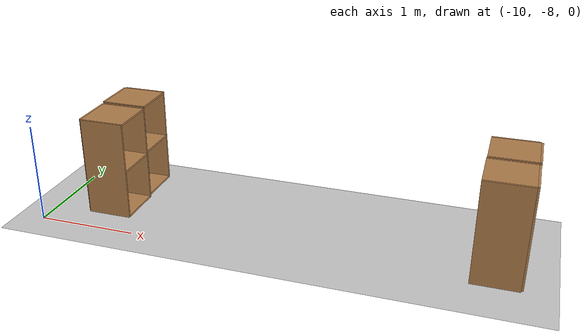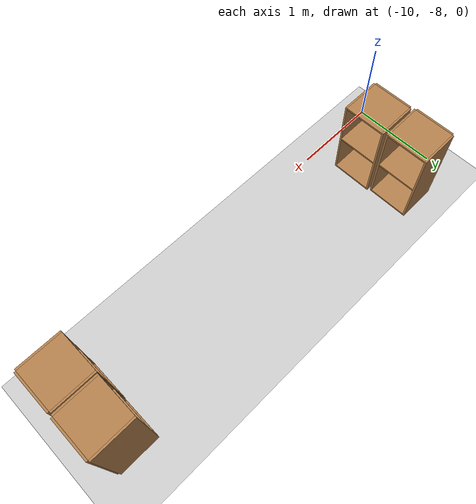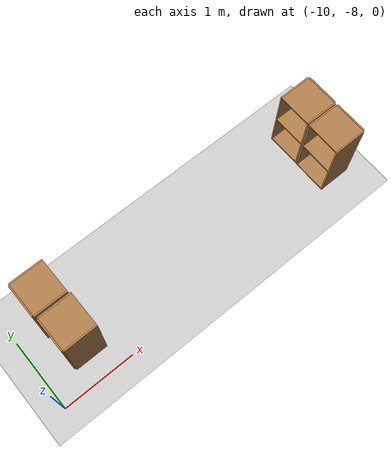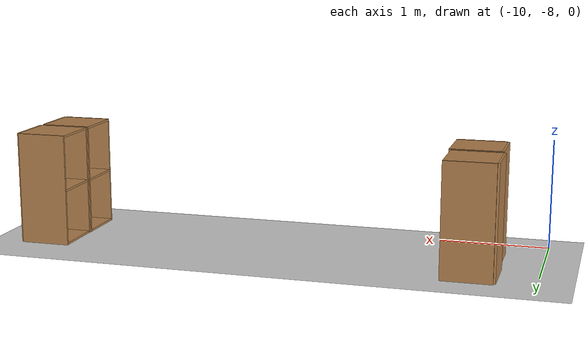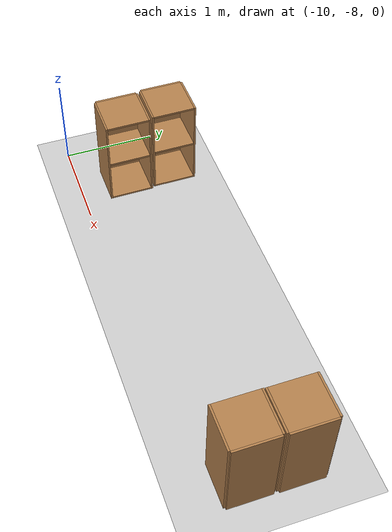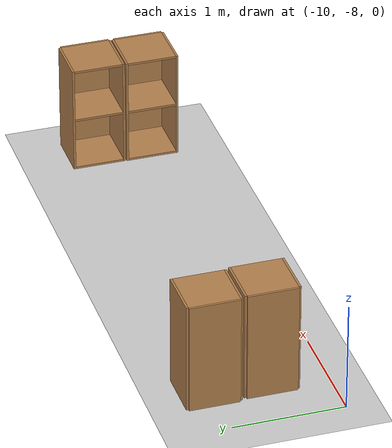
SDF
<sdf version="1.6">
 <world name="default">
  <model name="ground_plane">
   <static>1</static>
   <link name="link">
    <collision name="collision">
     <geometry><plane><normal>0 0 1</normal><size>100 100</size></plane></geometry>
     <surface><friction><ode><mu>100</mu><mu2>50</mu2></ode></friction></surface>
    </collision>
    <visual name="visual">
     <cast_shadows>0</cast_shadows>
     <geometry><plane><normal>0 0 1</normal><size>100 100</size></plane></geometry>
     <material>
      <script><uri>file://media/materials/scripts/gazebo.material</uri><name>Gazebo/Grey</name></script>
     </material>
    </visual>
   </link>
  </model>
  <model name="cabinet_clone_1">
   <static>1</static>
   <link name="cabinet_bottom_plate">
    <inertial>
     <pose>0 0 -1 0 -0 0</pose>
     <inertia><ixx>2.05</ixx><ixy>0</ixy><ixz>0</ixz><iyy>2.05</iyy><iyz>0</iyz><izz>2.05</izz></inertia>
     <mass>25</mass>
    </inertial>
    <collision name="cabinet_bottom_plate_geom">
     <pose>0 0 0.01 0 -0 0</pose>
     <geometry><box><size>0.45 0.45 0.02</size></box></geometry>
    </collision>
    <visual name="cabinet_bottom_plate_geom_visual">
     <pose>0 0 0.01 0 -0 0</pose>
     <geometry><box><size>0.45 0.45 0.02</size></box></geometry>
     <material>
      <script><uri>file://media/materials/scripts/gazebo.material</uri><name>Gazebo/Wood</name></script>
     </material>
    </visual>
    <collision name="cabinet_bottom_plate_geom_cabinet_back_plate">
     <pose>0.235 0 0.51 0 -0 0</pose>
     <geometry><box><size>0.02 0.45 1.02</size></box></geometry>
    </collision>
    <visual name="cabinet_bottom_plate_geom_cabinet_back_plate_visual">
     <pose>0.235 0 0.51 0 -0 0</pose>
     <geometry><box><size>0.02 0.45 1.02</size></box></geometry>
     <material>
      <script><uri>file://media/materials/scripts/gazebo.material</uri><name>Gazebo/Wood</name></script>
     </material>
    </visual>
    <collision name="cabinet_bottom_plate_geom_cabinet_left_plate">
     <pose>0 0.235 0.51 0 -0 0</pose>
     <geometry><box><size>0.45 0.02 1.02</size></box></geometry>
    </collision>
    <visual name="cabinet_bottom_plate_geom_cabinet_left_plate_visual">
     <pose>0 0.235 0.51 0 -0 0</pose>
     <geometry><box><size>0.45 0.02 1.02</size></box></geometry>
     <material>
      <script><uri>file://media/materials/scripts/gazebo.material</uri><name>Gazebo/Wood</name></script>
     </material>
    </visual>
    <collision name="cabinet_bottom_plate_geom_cabinet_middle_plate">
     <pose>0 0 0.51 0 -0 0</pose>
     <geometry><box><size>0.45 0.45 0.02</size></box></geometry>
    </collision>
    <visual name="cabinet_bottom_plate_geom_cabinet_middle_plate_visual">
     <pose>0 0 0.51 0 -0 0</pose>
     <geometry><box><size>0.45 0.45 0.02</size></box></geometry>
     <material>
      <script><uri>file://media/materials/scripts/gazebo.material</uri><name>Gazebo/Wood</name></script>
     </material>
    </visual>
    <collision name="cabinet_bottom_plate_geom_cabinet_right_plate">
     <pose>0 -0.235 0.51 0 -0 0</pose>
     <geometry><box><size>0.45 0.02 1.02</size></box></geometry>
    </collision>
    <visual name="cabinet_bottom_plate_geom_cabinet_right_plate_visual">
     <pose>0 -0.235 0.51 0 -0 0</pose>
     <geometry><box><size>0.45 0.02 1.02</size></box></geometry>
     <material>
      <script><uri>file://media/materials/scripts/gazebo.material</uri><name>Gazebo/Wood</name></script>
     </material>
    </visual>
    <collision name="cabinet_bottom_plate_geom_cabinet_top_plate">
     <pose>0 0 1.01 0 -0 0</pose>
     <geometry><box><size>0.45 0.45 0.02</size></box></geometry>
    </collision>
    <visual name="cabinet_bottom_plate_geom_cabinet_top_plate_visual">
     <pose>0 0 1.01 0 -0 0</pose>
     <geometry><box><size>0.45 0.45 0.02</size></box></geometry>
     <material>
      <script><uri>file://media/materials/scripts/gazebo.material</uri><name>Gazebo/Wood</name></script>
     </material>
    </visual>
   </link>
   <pose>-9.39749 -7.47225 0 0 0 -3.13836</pose>
  </model>
  <model name="cabinet_clone_2">
   <static>1</static>
   <link name="cabinet_bottom_plate">
    <inertial>
     <pose>0 0 -1 0 -0 0</pose>
     <inertia><ixx>2.05</ixx><ixy>0</ixy><ixz>0</ixz><iyy>2.05</iyy><iyz>0</iyz><izz>2.05</izz></inertia>
     <mass>25</mass>
    </inertial>
    <collision name="cabinet_bottom_plate_geom">
     <pose>0 0 0.01 0 -0 0</pose>
     <geometry><box><size>0.45 0.45 0.02</size></box></geometry>
    </collision>
    <visual name="cabinet_bottom_plate_geom_visual">
     <pose>0 0 0.01 0 -0 0</pose>
     <geometry><box><size>0.45 0.45 0.02</size></box></geometry>
     <material>
      <script><uri>file://media/materials/scripts/gazebo.material</uri><name>Gazebo/Wood</name></script>
     </material>
    </visual>
    <collision name="cabinet_bottom_plate_geom_cabinet_back_plate">
     <pose>0.235 0 0.51 0 -0 0</pose>
     <geometry><box><size>0.02 0.45 1.02</size></box></geometry>
    </collision>
    <visual name="cabinet_bottom_plate_geom_cabinet_back_plate_visual">
     <pose>0.235 0 0.51 0 -0 0</pose>
     <geometry><box><size>0.02 0.45 1.02</size></box></geometry>
     <material>
      <script><uri>file://media/materials/scripts/gazebo.material</uri><name>Gazebo/Wood</name></script>
     </material>
    </visual>
    <collision name="cabinet_bottom_plate_geom_cabinet_left_plate">
     <pose>0 0.235 0.51 0 -0 0</pose>
     <geometry><box><size>0.45 0.02 1.02</size></box></geometry>
    </collision>
    <visual name="cabinet_bottom_plate_geom_cabinet_left_plate_visual">
     <pose>0 0.235 0.51 0 -0 0</pose>
     <geometry><box><size>0.45 0.02 1.02</size></box></geometry>
     <material>
      <script><uri>file://media/materials/scripts/gazebo.material</uri><name>Gazebo/Wood</name></script>
     </material>
    </visual>
    <collision name="cabinet_bottom_plate_geom_cabinet_middle_plate">
     <pose>0 0 0.51 0 -0 0</pose>
     <geometry><box><size>0.45 0.45 0.02</size></box></geometry>
    </collision>
    <visual name="cabinet_bottom_plate_geom_cabinet_middle_plate_visual">
     <pose>0 0 0.51 0 -0 0</pose>
     <geometry><box><size>0.45 0.45 0.02</size></box></geometry>
     <material>
      <script><uri>file://media/materials/scripts/gazebo.material</uri><name>Gazebo/Wood</name></script>
     </material>
    </visual>
    <collision name="cabinet_bottom_plate_geom_cabinet_right_plate">
     <pose>0 -0.235 0.51 0 -0 0</pose>
     <geometry><box><size>0.45 0.02 1.02</size></box></geometry>
    </collision>
    <visual name="cabinet_bottom_plate_geom_cabinet_right_plate_visual">
     <pose>0 -0.235 0.51 0 -0 0</pose>
     <geometry><box><size>0.45 0.02 1.02</size></box></geometry>
     <material>
      <script><uri>file://media/materials/scripts/gazebo.material</uri><name>Gazebo/Wood</name></script>
     </material>
    </visual>
    <collision name="cabinet_bottom_plate_geom_cabinet_top_plate">
     <pose>0 0 1.01 0 -0 0</pose>
     <geometry><box><size>0.45 0.45 0.02</size></box></geometry>
    </collision>
    <visual name="cabinet_bottom_plate_geom_cabinet_top_plate_visual">
     <pose>0 0 1.01 0 -0 0</pose>
     <geometry><box><size>0.45 0.45 0.02</size></box></geometry>
     <material>
      <script><uri>file://media/materials/scripts/gazebo.material</uri><name>Gazebo/Wood</name></script>
     </material>
    </visual>
   </link>
   <pose>-9.4218 -6.96072 0 0 0 -3.13836</pose>
  </model>
  <model name="cabinet_clone_3">
   <static>1</static>
   <link name="cabinet_bottom_plate">
    <inertial>
     <pose>0 0 -1 0 -0 0</pose>
     <inertia><ixx>2.05</ixx><ixy>0</ixy><ixz>0</ixz><iyy>2.05</iyy><iyz>0</iyz><izz>2.05</izz></inertia>
     <mass>25</mass>
    </inertial>
    <collision name="cabinet_bottom_plate_geom">
     <pose>0 0 0.01 0 -0 0</pose>
     <geometry><box><size>0.45 0.45 0.02</size></box></geometry>
    </collision>
    <visual name="cabinet_bottom_plate_geom_visual">
     <pose>0 0 0.01 0 -0 0</pose>
     <geometry><box><size>0.45 0.45 0.02</size></box></geometry>
     <material>
      <script><uri>file://media/materials/scripts/gazebo.material</uri><name>Gazebo/Wood</name></script>
     </material>
    </visual>
    <collision name="cabinet_bottom_plate_geom_cabinet_back_plate">
     <pose>0.235 0 0.51 0 -0 0</pose>
     <geometry><box><size>0.02 0.45 1.02</size></box></geometry>
    </collision>
    <visual name="cabinet_bottom_plate_geom_cabinet_back_plate_visual">
     <pose>0.235 0 0.51 0 -0 0</pose>
     <geometry><box><size>0.02 0.45 1.02</size></box></geometry>
     <material>
      <script><uri>file://media/materials/scripts/gazebo.material</uri><name>Gazebo/Wood</name></script>
     </material>
    </visual>
    <collision name="cabinet_bottom_plate_geom_cabinet_left_plate">
     <pose>0 0.235 0.51 0 -0 0</pose>
     <geometry><box><size>0.45 0.02 1.02</size></box></geometry>
    </collision>
    <visual name="cabinet_bottom_plate_geom_cabinet_left_plate_visual">
     <pose>0 0.235 0.51 0 -0 0</pose>
     <geometry><box><size>0.45 0.02 1.02</size></box></geometry>
     <material>
      <script><uri>file://media/materials/scripts/gazebo.material</uri><name>Gazebo/Wood</name></script>
     </material>
    </visual>
    <collision name="cabinet_bottom_plate_geom_cabinet_middle_plate">
     <pose>0 0 0.51 0 -0 0</pose>
     <geometry><box><size>0.45 0.45 0.02</size></box></geometry>
    </collision>
    <visual name="cabinet_bottom_plate_geom_cabinet_middle_plate_visual">
     <pose>0 0 0.51 0 -0 0</pose>
     <geometry><box><size>0.45 0.45 0.02</size></box></geometry>
     <material>
      <script><uri>file://media/materials/scripts/gazebo.material</uri><name>Gazebo/Wood</name></script>
     </material>
    </visual>
    <collision name="cabinet_bottom_plate_geom_cabinet_right_plate">
     <pose>0 -0.235 0.51 0 -0 0</pose>
     <geometry><box><size>0.45 0.02 1.02</size></box></geometry>
    </collision>
    <visual name="cabinet_bottom_plate_geom_cabinet_right_plate_visual">
     <pose>0 -0.235 0.51 0 -0 0</pose>
     <geometry><box><size>0.45 0.02 1.02</size></box></geometry>
     <material>
      <script><uri>file://media/materials/scripts/gazebo.material</uri><name>Gazebo/Wood</name></script>
     </material>
    </visual>
    <collision name="cabinet_bottom_plate_geom_cabinet_top_plate">
     <pose>0 0 1.01 0 -0 0</pose>
     <geometry><box><size>0.45 0.45 0.02</size></box></geometry>
    </collision>
    <visual name="cabinet_bottom_plate_geom_cabinet_top_plate_visual">
     <pose>0 0 1.01 0 -0 0</pose>
     <geometry><box><size>0.45 0.45 0.02</size></box></geometry>
     <material>
      <script><uri>file://media/materials/scripts/gazebo.material</uri><name>Gazebo/Wood</name></script>
     </material>
    </visual>
   </link>
   <pose>-5.51572 -7.10166 0 0 -0 0.002353</pose>
  </model>
  <model name="cabinet_clone_3_clone_0">
   <static>1</static>
   <link name="cabinet_bottom_plate">
    <inertial>
     <pose>0 0 -1 0 -0 0</pose>
     <inertia><ixx>2.05</ixx><ixy>0</ixy><ixz>0</ixz><iyy>2.05</iyy><iyz>0</iyz><izz>2.05</izz></inertia>
     <mass>25</mass>
    </inertial>
    <collision name="cabinet_bottom_plate_geom">
     <pose>0 0 0.01 0 -0 0</pose>
     <geometry><box><size>0.45 0.45 0.02</size></box></geometry>
    </collision>
    <visual name="cabinet_bottom_plate_geom_visual">
     <pose>0 0 0.01 0 -0 0</pose>
     <geometry><box><size>0.45 0.45 0.02</size></box></geometry>
     <material>
      <script><uri>file://media/materials/scripts/gazebo.material</uri><name>Gazebo/Wood</name></script>
     </material>
    </visual>
    <collision name="cabinet_bottom_plate_geom_cabinet_back_plate">
     <pose>0.235 0 0.51 0 -0 0</pose>
     <geometry><box><size>0.02 0.45 1.02</size></box></geometry>
    </collision>
    <visual name="cabinet_bottom_plate_geom_cabinet_back_plate_visual">
     <pose>0.235 0 0.51 0 -0 0</pose>
     <geometry><box><size>0.02 0.45 1.02</size></box></geometry>
     <material>
      <script><uri>file://media/materials/scripts/gazebo.material</uri><name>Gazebo/Wood</name></script>
     </material>
    </visual>
    <collision name="cabinet_bottom_plate_geom_cabinet_left_plate">
     <pose>0 0.235 0.51 0 -0 0</pose>
     <geometry><box><size>0.45 0.02 1.02</size></box></geometry>
    </collision>
    <visual name="cabinet_bottom_plate_geom_cabinet_left_plate_visual">
     <pose>0 0.235 0.51 0 -0 0</pose>
     <geometry><box><size>0.45 0.02 1.02</size></box></geometry>
     <material>
      <script><uri>file://media/materials/scripts/gazebo.material</uri><name>Gazebo/Wood</name></script>
     </material>
    </visual>
    <collision name="cabinet_bottom_plate_geom_cabinet_middle_plate">
     <pose>0 0 0.51 0 -0 0</pose>
     <geometry><box><size>0.45 0.45 0.02</size></box></geometry>
    </collision>
    <visual name="cabinet_bottom_plate_geom_cabinet_middle_plate_visual">
     <pose>0 0 0.51 0 -0 0</pose>
     <geometry><box><size>0.45 0.45 0.02</size></box></geometry>
     <material>
      <script><uri>file://media/materials/scripts/gazebo.material</uri><name>Gazebo/Wood</name></script>
     </material>
    </visual>
    <collision name="cabinet_bottom_plate_geom_cabinet_right_plate">
     <pose>0 -0.235 0.51 0 -0 0</pose>
     <geometry><box><size>0.45 0.02 1.02</size></box></geometry>
    </collision>
    <visual name="cabinet_bottom_plate_geom_cabinet_right_plate_visual">
     <pose>0 -0.235 0.51 0 -0 0</pose>
     <geometry><box><size>0.45 0.02 1.02</size></box></geometry>
     <material>
      <script><uri>file://media/materials/scripts/gazebo.material</uri><name>Gazebo/Wood</name></script>
     </material>
    </visual>
    <collision name="cabinet_bottom_plate_geom_cabinet_top_plate">
     <pose>0 0 1.01 0 -0 0</pose>
     <geometry><box><size>0.45 0.45 0.02</size></box></geometry>
    </collision>
    <visual name="cabinet_bottom_plate_geom_cabinet_top_plate_visual">
     <pose>0 0 1.01 0 -0 0</pose>
     <geometry><box><size>0.45 0.45 0.02</size></box></geometry>
     <material>
      <script><uri>file://media/materials/scripts/gazebo.material</uri><name>Gazebo/Wood</name></script>
     </material>
    </visual>
   </link>
   <pose>-5.51884 -7.60037 0 0 -0 0.002353</pose>
  </model>
 </world>
</sdf>
